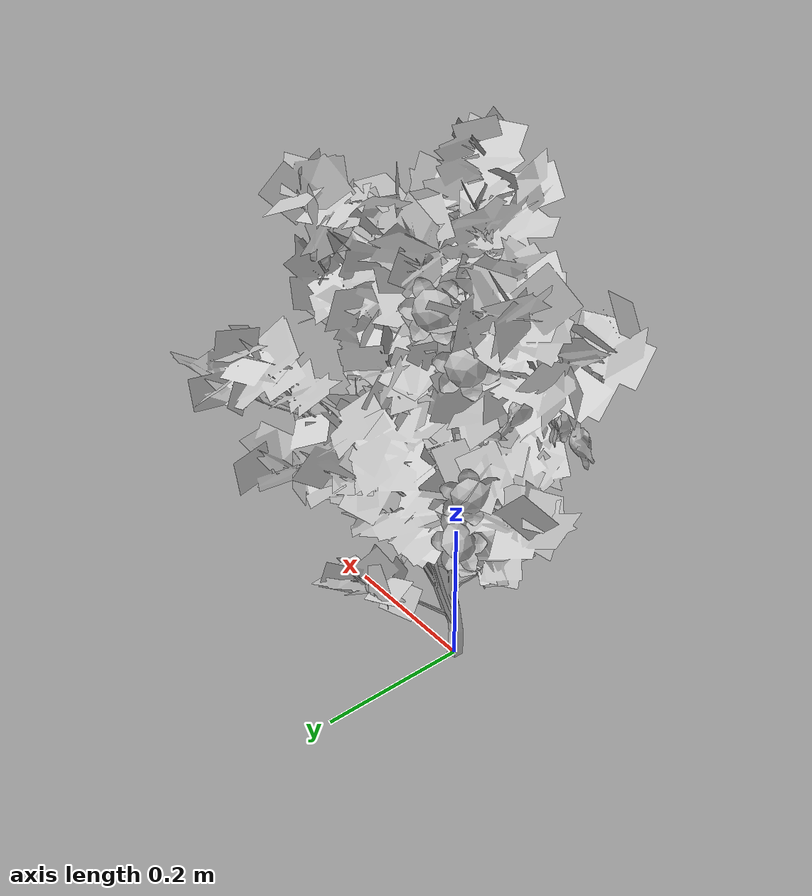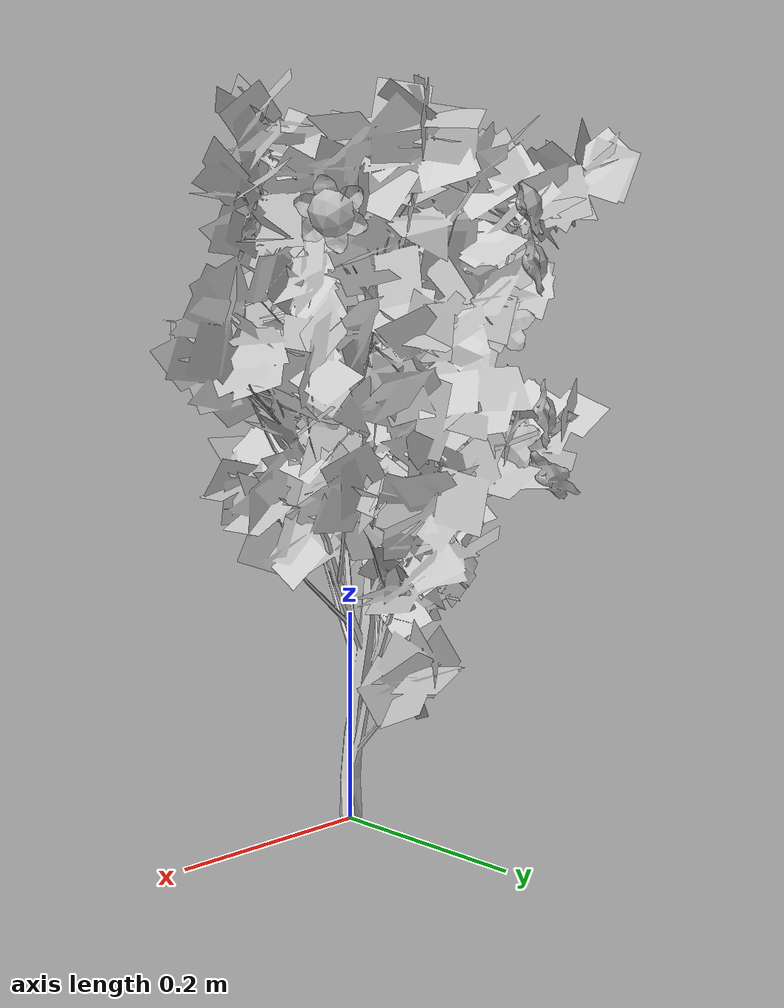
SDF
<?xml version="1.0" ?>
<sdf version="1.6">
  <model name="tree-flowers">
    <!--Skew-Seed:4145387398-->
    <static>true</static>
    <link name="link"/>
    <include>
      <uri>model://tree-mesh</uri>
      <pose>0 0 0 0 0 0</pose>
    </include>
    <joint name="tree_joint" type="fixed">
      <child>tree-mesh::link</child>
      <parent>link</parent>
    </joint>
    <include>
      <name>bramble_0</name>
      <uri>model://bramble</uri>
      <pose> -0.10118252680640186 0.11817238160980771 0.5778887616673711 -2.2673000910372547 2.1444986014039733 0.0</pose>
    </include>
    <joint name="flower_joint_0" type="fixed">
      <child>bramble_0::flower_link</child>
      <parent>link</parent>
    </joint>
    <include>
      <name>bramble_1</name>
      <uri>model://bramble</uri>
      <pose> -0.12196874261443447 -0.06546531541378557 0.3624769740247931 -4.37062854049748 2.03190018890212 0.0</pose>
    </include>
    <joint name="flower_joint_1" type="fixed">
      <child>bramble_1::flower_link</child>
      <parent>link</parent>
    </joint>
    <include>
      <name>bramble_2</name>
      <uri>model://bramble</uri>
      <pose> 0.10511122747649543 0.09499916406012951 0.5780598310616636 -0.5132267196469972 1.7774667232135268 0.0</pose>
    </include>
    <joint name="flower_joint_2" type="fixed">
      <child>bramble_2::flower_link</child>
      <parent>link</parent>
    </joint>
    <include>
      <name>bramble_3</name>
      <uri>model://bramble</uri>
      <pose> -0.11288808850968518 0.09099349512887955 0.36156637063079056 -3.1953272963788724 1.201076037969981 0.0</pose>
    </include>
    <joint name="flower_joint_3" type="fixed">
      <child>bramble_3::flower_link</child>
      <parent>link</parent>
    </joint>
    <include>
      <name>bramble_4</name>
      <uri>model://bramble</uri>
      <pose> -0.1283451643232772 0.10138435740675533 0.5244732513276268 -2.4697550145355427 1.8651264716294225 0.0</pose>
    </include>
    <joint name="flower_joint_4" type="fixed">
      <child>bramble_4::flower_link</child>
      <parent>link</parent>
    </joint>
    <include>
      <name>bramble_5</name>
      <uri>model://bramble</uri>
      <pose> -0.07260284652062388 -0.03958637097184132 0.5130685925559538 -3.6979084658219197 1.0186479359135507 0.0</pose>
    </include>
    <joint name="flower_joint_5" type="fixed">
      <child>bramble_5::flower_link</child>
      <parent>link</parent>
    </joint>
    <include>
      <name>bramble_6</name>
      <uri>model://bramble</uri>
      <pose> -0.12012254262506447 -0.05188313890679279 0.4788499440060828 -3.5683216120044206 1.582757664905515 0.0</pose>
    </include>
    <joint name="flower_joint_6" type="fixed">
      <child>bramble_6::flower_link</child>
      <parent>link</parent>
    </joint>
    <include>
      <name>bramble_7</name>
      <uri>model://bramble</uri>
      <pose> -0.12835445648485633 0.0521909504678886 0.5706255836699554 -3.4450207712872905 1.1745927363399198 0.0</pose>
    </include>
    <joint name="flower_joint_7" type="fixed">
      <child>bramble_7::flower_link</child>
      <parent>link</parent>
    </joint>
    <include>
      <name>bramble_8</name>
      <uri>model://bramble</uri>
      <pose> 0.0715178842204629 -0.041262058271592024 0.558944127292341 0.7621575981585211 1.1263994903427617 0.0</pose>
    </include>
    <joint name="flower_joint_8" type="fixed">
      <child>bramble_8::flower_link</child>
      <parent>link</parent>
    </joint>
    <include>
      <name>bramble_9</name>
      <uri>model://bramble</uri>
      <pose> -0.11590872766983903 -0.045087827191578694 0.40772415067174206 -3.3833778844098177 1.5736174413529054 0.0</pose>
    </include>
    <joint name="flower_joint_9" type="fixed">
      <child>bramble_9::flower_link</child>
      <parent>link</parent>
    </joint>
    <include>
      <name>bramble_10</name>
      <uri>model://bramble</uri>
      <pose> -0.13572747167369695 0.11920091482418226 0.3213456775492232 -3.180621011247381 2.321322058343809 0.0</pose>
    </include>
    <joint name="flower_joint_10" type="fixed">
      <child>bramble_10::flower_link</child>
      <parent>link</parent>
    </joint>
    <include>
      <name>bramble_11</name>
      <uri>model://bramble</uri>
      <pose> -0.14501437520457075 0.052009869841511916 0.46718307752739163 -3.5237809901558648 1.1592371862371191 0.0</pose>
    </include>
    <joint name="flower_joint_11" type="fixed">
      <child>bramble_11::flower_link</child>
      <parent>link</parent>
    </joint>
    <include>
      <name>bramble_12</name>
      <uri>model://bramble</uri>
      <pose> -0.14129679456755442 0.10328850406001856 0.38267822235812 -2.4576943272040532 1.6755350484877911 0.0</pose>
    </include>
    <joint name="flower_joint_12" type="fixed">
      <child>bramble_12::flower_link</child>
      <parent>link</parent>
    </joint>
    <include>
      <name>bramble_13</name>
      <uri>model://bramble</uri>
      <pose> -0.14354281927384707 -0.04750092920122621 0.4629292363577418 -3.175123962761414 1.116767134202363 0.0</pose>
    </include>
    <joint name="flower_joint_13" type="fixed">
      <child>bramble_13::flower_link</child>
      <parent>link</parent>
    </joint>
    <include>
      <name>bramble_14</name>
      <uri>model://bramble</uri>
      <pose> -0.10953823788646369 -0.03778071776804182 0.40370199163566123 -3.9881244619525678 1.4545874066247468 0.0</pose>
    </include>
    <joint name="flower_joint_14" type="fixed">
      <child>bramble_14::flower_link</child>
      <parent>link</parent>
    </joint>
    <include>
      <name>bramble_15</name>
      <uri>model://bramble</uri>
      <pose> 0.0840795698545222 -0.03534265647677643 0.42806237077683307 -0.3292219815255758 2.1207673806524423 0.0</pose>
    </include>
    <joint name="flower_joint_15" type="fixed">
      <child>bramble_15::flower_link</child>
      <parent>link</parent>
    </joint>
  </model>
</sdf>

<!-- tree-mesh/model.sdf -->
<sdf version="1.6">
  <model name="tree-mesh">
    <static>true</static>
    <link name="link">

      <collision name="collision">
        <geometry>
          <mesh>
            <uri>model://tree-mesh/meshes/new_tree.dae</uri>
            <scale>0.0625 0.0625 0.0625</scale>
          </mesh>
        </geometry>
      </collision>

      <!-- simplified collision for sake of speed since leaves shouldn't be blocking anyway -->

      <visual name="leaves">
        <geometry>
          <mesh>
            <uri>model://tree-mesh/meshes/leaves.dae</uri>
            <scale>0.0325 0.0325 0.0325</scale>
          </mesh>
        </geometry>
        <material>
          <script>
            <uri>model://tree-mesh/materials/scripts/</uri>
            <uri>model://tree-mesh/materials/textures/</uri>
            <name>NewTree/Branch</name>
          </script>
        </material>
      </visual>
      <visual name="bark">
        <geometry>
          <mesh>
            <uri>model://tree-mesh/meshes/bark.dae</uri>
            <scale>0.0325 0.0325 0.0325</scale>
          </mesh>
        </geometry>
        <material>
          <script>
            <uri>model://tree-mesh/materials/scripts/</uri>
            <uri>model://tree-mesh/materials/textures/</uri>
            <name>NewTree/Bark</name>
          </script>
        </material>
      </visual>
    </link>
  </model>
</sdf>

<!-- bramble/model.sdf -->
<sdf version="1.6">
  <model name="bramble-flower">
    <static>true</static>
    <link name="flower_link">
      <collision name="body_collision">
        <geometry>
          <mesh>
            <uri>model://bramble/meshes/bramble.dae</uri>
            <scale>0.4 0.4 0.4</scale>
          </mesh>
        </geometry>
      </collision>
      <visual name="petals">
        <geometry>
          <mesh>
            <uri>model://bramble/meshes/bramble.dae</uri>
            <scale>0.4 0.4 0.4</scale>
            <submesh>
              <name>petal</name>
            </submesh>
          </mesh>
        </geometry>
        <material>
          <script>
            <uri>model://bramble/materials/scripts/</uri>
            <uri>model://bramble/materials/textures/</uri>
            <name>Bramble/Petal</name>
          </script>
        </material>
      </visual>
      <visual name="carpel">
        <geometry>
          <mesh>
            <uri>model://bramble/meshes/bramble.dae</uri>
            <scale>0.4 0.4 0.4</scale>
            <submesh>
              <name>carpel</name>
            </submesh>
          </mesh>
        </geometry>
        <material>
          <script>
            <uri>model://bramble/materials/scripts/</uri>
            <uri>model://bramble/materials/textures/</uri>
            <name>Bramble/Carpel</name>
          </script>
        </material>
      </visual>
      <visual name="stamen">
        <geometry>
          <mesh>
            <uri>model://bramble/meshes/bramble.dae</uri>
            <scale>0.4 0.4 0.4</scale>
            <submesh>
              <name>stamen</name>
            </submesh>
          </mesh>
        </geometry>
        <material>
          <script>
            <uri>model://bramble/materials/scripts/</uri>
            <uri>model://bramble/materials/textures/</uri>
            <name>Bramble/Stamen</name>
          </script>
        </material>
      </visual>
    </link>
  </model>
</sdf>
